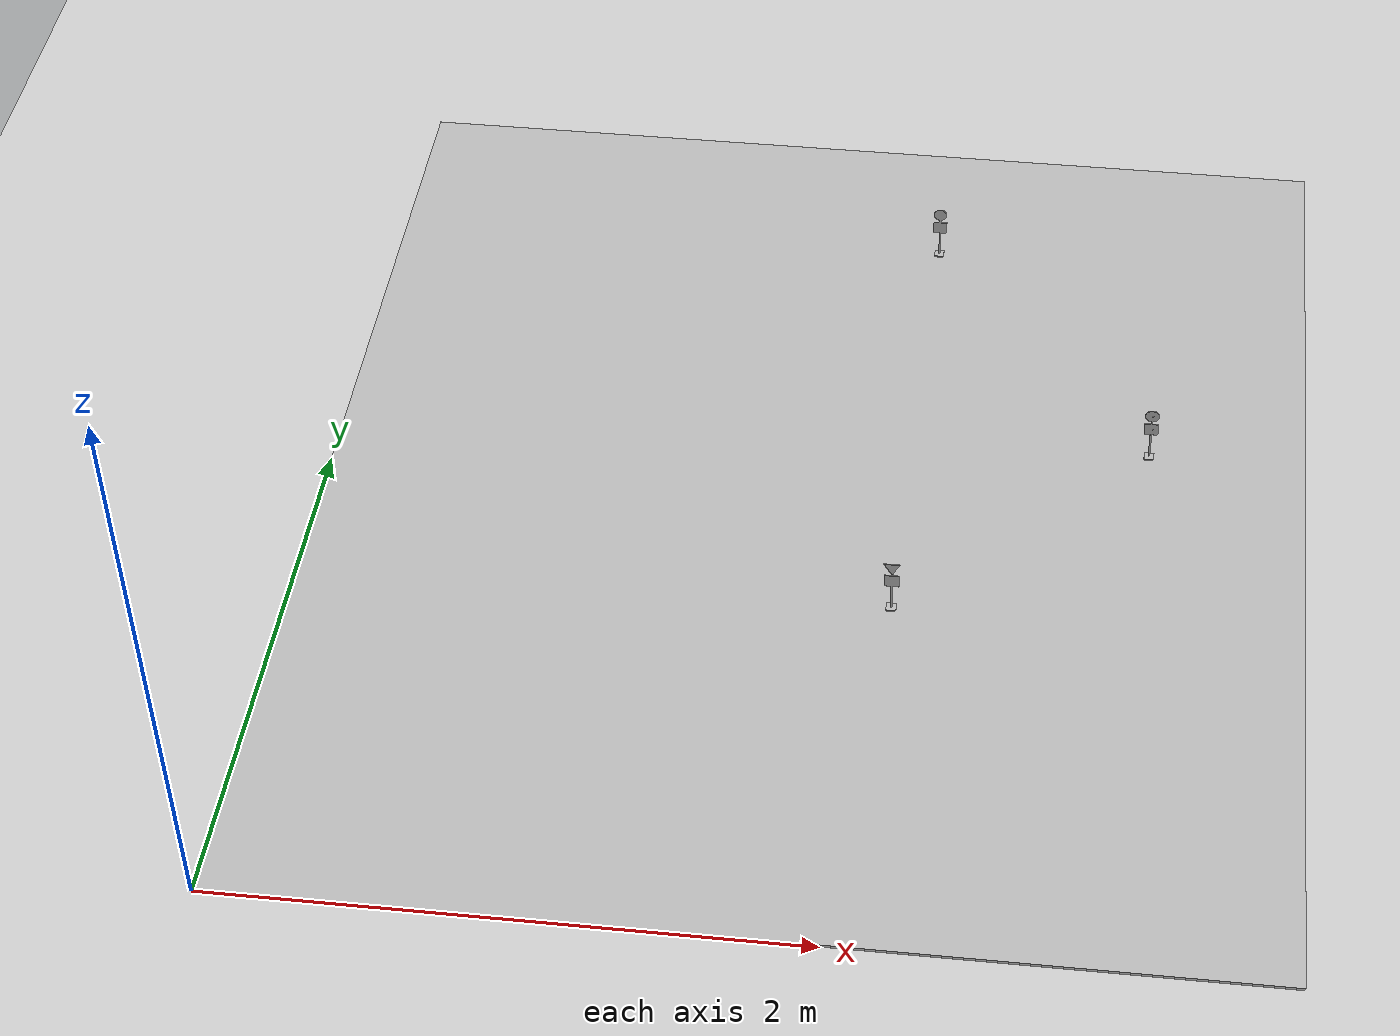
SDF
<sdf version="1.6">
 <world name="default">
  <light name="sun" type="directional">
   <pose>0 0 10 0 -0 0</pose>
   <diffuse>0.8 0.8 0.8 1</diffuse>
   <specular>0.1 0.1 0.1 1</specular>
   <attenuation>
    <range>1000</range>
    <constant>0.9</constant>
    <linear>0.01</linear>
    <quadratic>0.001</quadratic>
   </attenuation>
   <direction>-0.5 0.5 -1</direction>
  </light>
  <model name="ground_plane">
   <static>1</static>
   <link name="link">
    <collision name="collision">
     <geometry><plane><normal>0 0 1</normal><size>100 100</size></plane></geometry>
     <surface><friction><ode><mu>100</mu><mu2>50</mu2></ode></friction></surface>
    </collision>
    <visual name="visual">
     <cast_shadows>0</cast_shadows>
     <geometry><plane><normal>0 0 1</normal><size>100 100</size></plane></geometry>
     <material>
      <script><uri>file://media/materials/scripts/gazebo.material</uri><name>Gazebo/Grey</name></script>
     </material>
    </visual>
   </link>
  </model>
  <gravity>0 0 -9.8</gravity>
  <magnetic_field>6e-06 2.3e-05 -4.2e-05</magnetic_field>
  <atmosphere type="adiabatic"/>
  <physics name="default_physics" default="0" type="ode">
   <max_step_size>0.001</max_step_size>
   <real_time_factor>1</real_time_factor>
   <real_time_update_rate>1000</real_time_update_rate>
  </physics>
  <scene><ambient>0.4 0.4 0.4 1</ambient><background>0.7 0.7 0.7 1</background><shadows>1</shadows></scene>
  <spherical_coordinates>
   <surface_model>EARTH_WGS84</surface_model>
   <latitude_deg>0</latitude_deg>
   <longitude_deg>0</longitude_deg>
   <elevation>0</elevation>
   <heading_deg>0</heading_deg>
  </spherical_coordinates>
  <model name="bigcity">
   <link name="link_0">
    <inertial>
     <mass>1</mass>
     <inertia>
      <ixx>0.166667</ixx>
      <ixy>0</ixy>
      <ixz>0</ixz>
      <iyy>0.166667</iyy>
      <iyz>0</iyz>
      <izz>0.166667</izz>
     </inertia>
    </inertial>
    <visual name="visual">
     <geometry><mesh><uri>file://models/stl/daeBlender/bigcity.dae</uri><scale>1 1 1</scale></mesh></geometry>
    </visual>
    <collision name="collision">
     <geometry><mesh><uri>file://models/stl/daeBlender/bigcity.dae</uri><scale>1 1 1</scale></mesh></geometry>
     <surface>
      <friction>
       <ode><mu>1</mu><mu2>1</mu2><fdir1>0 0 0</fdir1><slip1>0</slip1><slip2>0</slip2></ode>
       <torsional>
        <coefficient>1</coefficient>
        <patch_radius>0</patch_radius>
        <surface_radius>0</surface_radius>
        <use_patch_radius>1</use_patch_radius>
        <ode><slip>0</slip></ode>
       </torsional>
      </friction>
      <bounce><restitution_coefficient>0</restitution_coefficient><threshold>1e+06</threshold></bounce>
      <contact>
       <collide_without_contact>0</collide_without_contact>
       <collide_without_contact_bitmask>1</collide_without_contact_bitmask>
       <collide_bitmask>1</collide_bitmask>
       <ode>
        <soft_cfm>0</soft_cfm>
        <soft_erp>0.2</soft_erp>
        <kp>1e+13</kp>
        <kd>1</kd>
        <max_vel>0.01</max_vel>
        <min_depth>0</min_depth>
       </ode>
       <bullet>
        <split_impulse>1</split_impulse>
        <split_impulse_penetration_threshold>-0.01</split_impulse_penetration_threshold>
        <soft_cfm>0</soft_cfm>
        <soft_erp>0.2</soft_erp>
        <kp>1e+13</kp>
        <kd>1</kd>
       </bullet>
      </contact>
     </surface>
    </collision>
   </link>
   <static>1</static>
   <pose>0 0 0.002788 0 -0 0</pose>
  </model>
  <model name="parar_aruco">
   <link name="link_13">
    <inertial>
     <mass>0.02</mass>
     <inertia>
      <ixx>0.166667</ixx>
      <ixy>0</ixy>
      <ixz>0</ixz>
      <iyy>0.166667</iyy>
      <iyz>0</iyz>
      <izz>0.166667</izz>
     </inertia>
    </inertial>
    <visual name="visual">
     <geometry>
      <mesh><uri>file://models/stl/SENALES_ARUCOS/PARAR/parar_aruco.dae</uri><scale>1 1 1</scale></mesh>
     </geometry>
    </visual>
    <collision name="collision">
     <geometry>
      <mesh><uri>file://models/stl/SENALES_ARUCOS/PARAR/parar_aruco.dae</uri><scale>1 1 1</scale></mesh>
     </geometry>
     <surface>
      <friction>
       <ode><mu>1</mu><mu2>1</mu2><fdir1>0 0 0</fdir1><slip1>0</slip1><slip2>0</slip2></ode>
       <torsional>
        <coefficient>1</coefficient>
        <patch_radius>0</patch_radius>
        <surface_radius>0</surface_radius>
        <use_patch_radius>1</use_patch_radius>
        <ode><slip>0</slip></ode>
       </torsional>
      </friction>
      <bounce><restitution_coefficient>0</restitution_coefficient><threshold>1e+06</threshold></bounce>
      <contact>
       <collide_without_contact>0</collide_without_contact>
       <collide_without_contact_bitmask>1</collide_without_contact_bitmask>
       <collide_bitmask>1</collide_bitmask>
       <ode>
        <soft_cfm>0</soft_cfm>
        <soft_erp>0.2</soft_erp>
        <kp>1e+13</kp>
        <kd>1</kd>
        <max_vel>0.01</max_vel>
        <min_depth>0</min_depth>
       </ode>
       <bullet>
        <split_impulse>1</split_impulse>
        <split_impulse_penetration_threshold>-0.01</split_impulse_penetration_threshold>
        <soft_cfm>0</soft_cfm>
        <soft_erp>0.2</soft_erp>
        <kp>1e+13</kp>
        <kd>1</kd>
       </bullet>
      </contact>
     </surface>
    </collision>
   </link>
   <static>0</static>
   <pose>2.08973 3.38533 0.012778 2e-06 -1e-06 -0</pose>
  </model>
  <model name="ceda_aruco">
   <link name="link_9">
    <inertial>
     <mass>0.02</mass>
     <inertia>
      <ixx>0.166667</ixx>
      <ixy>0</ixy>
      <ixz>0</ixz>
      <iyy>0.166667</iyy>
      <iyz>0</iyz>
      <izz>0.166667</izz>
     </inertia>
    </inertial>
    <visual name="visual">
     <geometry>
      <mesh><uri>file://models/stl/SENALES_ARUCOS/CEDA/ceda_aruco.dae</uri><scale>1 1 1</scale></mesh>
     </geometry>
    </visual>
    <collision name="collision">
     <geometry>
      <mesh><uri>file://models/stl/SENALES_ARUCOS/CEDA/ceda_aruco.dae</uri><scale>1 1 1</scale></mesh>
     </geometry>
     <surface>
      <friction>
       <ode><mu>1</mu><mu2>1</mu2><fdir1>0 0 0</fdir1><slip1>0</slip1><slip2>0</slip2></ode>
       <torsional>
        <coefficient>1</coefficient>
        <patch_radius>0</patch_radius>
        <surface_radius>0</surface_radius>
        <use_patch_radius>1</use_patch_radius>
        <ode><slip>0</slip></ode>
       </torsional>
      </friction>
      <bounce><restitution_coefficient>0</restitution_coefficient><threshold>1e+06</threshold></bounce>
      <contact>
       <collide_without_contact>0</collide_without_contact>
       <collide_without_contact_bitmask>1</collide_without_contact_bitmask>
       <collide_bitmask>1</collide_bitmask>
       <ode>
        <soft_cfm>0</soft_cfm>
        <soft_erp>0.2</soft_erp>
        <kp>1e+13</kp>
        <kd>1</kd>
        <max_vel>0.01</max_vel>
        <min_depth>0</min_depth>
       </ode>
       <bullet>
        <split_impulse>1</split_impulse>
        <split_impulse_penetration_threshold>-0.01</split_impulse_penetration_threshold>
        <soft_cfm>0</soft_cfm>
        <soft_erp>0.2</soft_erp>
        <kp>1e+13</kp>
        <kd>1</kd>
       </bullet>
      </contact>
     </surface>
    </collision>
   </link>
   <static>0</static>
   <pose>2.08264 1.47002 0.012778 6e-06 1e-06 0</pose>
  </model>
  <model name="derecha_aruco">
   <link name="link_10">
    <inertial>
     <mass>0.02</mass>
     <inertia>
      <ixx>0.166667</ixx>
      <ixy>0</ixy>
      <ixz>0</ixz>
      <iyy>0.166667</iyy>
      <iyz>0</iyz>
      <izz>0.166667</izz>
     </inertia>
    </inertial>
    <visual name="visual">
     <geometry>
      <mesh><uri>file://models/stl/SENALES_ARUCOS/DERECHA/cha_aruco.dae</uri><scale>1 1 1</scale></mesh>
     </geometry>
    </visual>
    <collision name="collision">
     <geometry>
      <mesh><uri>file://models/stl/SENALES_ARUCOS/DERECHA/cha_aruco.dae</uri><scale>1 1 1</scale></mesh>
     </geometry>
     <surface>
      <friction>
       <ode><mu>1</mu><mu2>1</mu2><fdir1>0 0 0</fdir1><slip1>0</slip1><slip2>0</slip2></ode>
       <torsional>
        <coefficient>1</coefficient>
        <patch_radius>0</patch_radius>
        <surface_radius>0</surface_radius>
        <use_patch_radius>1</use_patch_radius>
        <ode><slip>0</slip></ode>
       </torsional>
      </friction>
      <bounce><restitution_coefficient>0</restitution_coefficient><threshold>1e+06</threshold></bounce>
      <contact>
       <collide_without_contact>0</collide_without_contact>
       <collide_without_contact_bitmask>1</collide_without_contact_bitmask>
       <collide_bitmask>1</collide_bitmask>
       <ode>
        <soft_cfm>0</soft_cfm>
        <soft_erp>0.2</soft_erp>
        <kp>1e+13</kp>
        <kd>1</kd>
        <max_vel>0.01</max_vel>
        <min_depth>0</min_depth>
       </ode>
       <bullet>
        <split_impulse>1</split_impulse>
        <split_impulse_penetration_threshold>-0.01</split_impulse_penetration_threshold>
        <soft_cfm>0</soft_cfm>
        <soft_erp>0.2</soft_erp>
        <kp>1e+13</kp>
        <kd>1</kd>
       </bullet>
      </contact>
     </surface>
    </collision>
   </link>
   <static>0</static>
   <pose>2.93763 2.32825 0.013424 -0.005135 0.005604 3.13058</pose>
  </model>
 </world>
</sdf>
